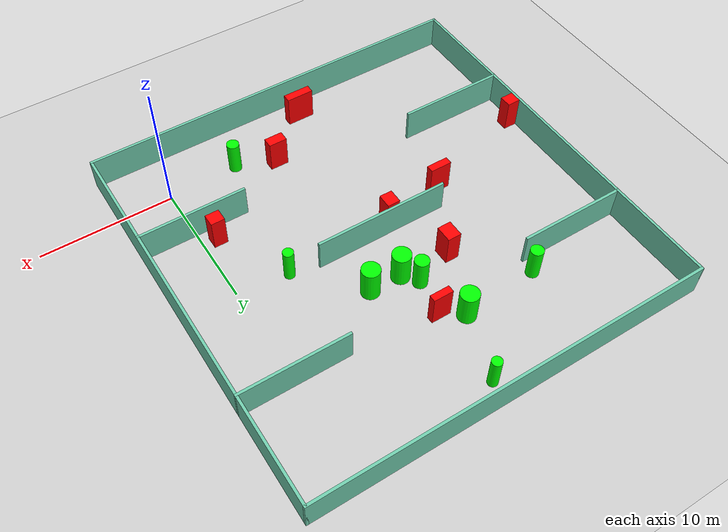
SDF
<sdf version="1.7">
 <world name="default">
  <light name="sun" type="directional">
   <pose>0 0 10 0 -0 0</pose>
   <diffuse>0.8 0.8 0.8 1</diffuse>
   <specular>0.2 0.2 0.2 1</specular>
   <attenuation>
    <range>1000</range>
    <constant>0.9</constant>
    <linear>0.01</linear>
    <quadratic>0.001</quadratic>
   </attenuation>
   <direction>-0.5 0.1 -0.9</direction>
   <spot><inner_angle>0</inner_angle><outer_angle>0</outer_angle><falloff>0</falloff></spot>
  </light>
  <model name="ground_plane">
   <static>1</static>
   <link name="link">
    <collision name="collision">
     <geometry><plane><normal>0 0 1</normal><size>100 100</size></plane></geometry>
     <surface>
      <contact><collide_bitmask>65535</collide_bitmask></contact>
      <friction><ode><mu>100</mu><mu2>50</mu2></ode></friction>
     </surface>
    </collision>
    <visual name="visual">
     <cast_shadows>0</cast_shadows>
     <geometry><plane><normal>0 0 1</normal><size>100 100</size></plane></geometry>
     <material>
      <script><uri>file://media/materials/scripts/gazebo.material</uri><name>Gazebo/Grey</name></script>
     </material>
    </visual>
   </link>
  </model>
  <gravity>0 0 -9.8</gravity>
  <magnetic_field>6e-06 2.3e-05 -4.2e-05</magnetic_field>
  <atmosphere type="adiabatic"/>
  <physics type="ode">
   <max_step_size>0.001</max_step_size>
   <real_time_factor>1</real_time_factor>
   <real_time_update_rate>1000</real_time_update_rate>
  </physics>
  <scene><ambient>0.4 0.4 0.4 1</ambient><background>0.7 0.7 0.7 1</background><shadows>1</shadows></scene>
  <spherical_coordinates>
   <surface_model>EARTH_WGS84</surface_model>
   <latitude_deg>0</latitude_deg>
   <longitude_deg>0</longitude_deg>
   <elevation>0</elevation>
   <heading_deg>0</heading_deg>
  </spherical_coordinates>
  <model name="my_base_walls">
   <link name="Wall_10">
    <collision name="Wall_10_Collision">
     <geometry><box><size>8.2 0.2 2.5</size></box></geometry>
     <pose>0 0 1.25 0 -0 0</pose>
    </collision>
    <visual name="Wall_10_Visual">
     <pose>0 0 1.25 0 -0 0</pose>
     <geometry><box><size>8.2 0.2 2.5</size></box></geometry>
     <material>
      <script><uri>file://media/materials/scripts/gazebo.material</uri><name>Gazebo/Grey</name></script>
      <ambient>0.435294 0.796078 0.67451 1</ambient>
     </material>
     <meta><layer>0</layer></meta>
    </visual>
    <pose>-11 -7 0 0 -0 0</pose>
   </link>
   <link name="Wall_12">
    <collision name="Wall_12_Collision">
     <geometry><box><size>8.2 0.2 2.5</size></box></geometry>
     <pose>0 0 1.25 0 -0 0</pose>
    </collision>
    <visual name="Wall_12_Visual">
     <pose>0 0 1.25 0 -0 0</pose>
     <geometry><box><size>8.2 0.2 2.5</size></box></geometry>
     <material>
      <script><uri>file://media/materials/scripts/gazebo.material</uri><name>Gazebo/Grey</name></script>
      <ambient>0.435294 0.796078 0.67451 1</ambient>
     </material>
     <meta><layer>0</layer></meta>
    </visual>
    <pose>-11 7 0 0 -0 0</pose>
   </link>
   <link name="Wall_14">
    <collision name="Wall_14_Collision">
     <geometry><box><size>8.2 0.2 2.5</size></box></geometry>
     <pose>0 0 1.25 0 -0 0</pose>
    </collision>
    <visual name="Wall_14_Visual">
     <pose>0 0 1.25 0 -0 0</pose>
     <geometry><box><size>8.2 0.2 2.5</size></box></geometry>
     <material>
      <script><uri>file://media/materials/scripts/gazebo.material</uri><name>Gazebo/Grey</name></script>
      <ambient>0.435294 0.796078 0.67451 1</ambient>
     </material>
     <meta><layer>0</layer></meta>
    </visual>
    <pose>11 7 0 0 -0 3.14159</pose>
   </link>
   <link name="Wall_16">
    <collision name="Wall_16_Collision">
     <geometry><box><size>10.2 0.2 2.5</size></box></geometry>
     <pose>0 0 1.25 0 -0 0</pose>
    </collision>
    <visual name="Wall_16_Visual">
     <pose>0 0 1.25 0 -0 0</pose>
     <geometry><box><size>10.2 0.2 2.5</size></box></geometry>
     <material>
      <script><uri>file://media/materials/scripts/gazebo.material</uri><name>Gazebo/Grey</name></script>
      <ambient>0.435294 0.796078 0.67451 1</ambient>
     </material>
     <meta><layer>0</layer></meta>
    </visual>
    <pose>0 0 0 0 -0 3.14159</pose>
   </link>
   <link name="Wall_2">
    <collision name="Wall_2_Collision">
     <geometry><box><size>30.2 0.2 2.5</size></box></geometry>
     <pose>0 0 1.25 0 -0 0</pose>
    </collision>
    <visual name="Wall_2_Visual">
     <pose>0 0 1.25 0 -0 0</pose>
     <geometry><box><size>30.2 0.2 2.5</size></box></geometry>
     <material>
      <script><uri>file://media/materials/scripts/gazebo.material</uri><name>Gazebo/Grey</name></script>
      <ambient>0.435294 0.796078 0.67451 1</ambient>
     </material>
     <meta><layer>0</layer></meta>
    </visual>
    <pose>0 -15 0 0 -0 3.14159</pose>
   </link>
   <link name="Wall_3">
    <collision name="Wall_3_Collision">
     <geometry><box><size>30.2 0.2 2.5</size></box></geometry>
     <pose>0 0 1.25 0 -0 0</pose>
    </collision>
    <visual name="Wall_3_Visual">
     <pose>0 0 1.25 0 -0 0</pose>
     <geometry><box><size>30.2 0.2 2.5</size></box></geometry>
     <material>
      <script><uri>file://media/materials/scripts/gazebo.material</uri><name>Gazebo/Grey</name></script>
      <ambient>0.435294 0.796078 0.67451 1</ambient>
     </material>
     <meta><layer>0</layer></meta>
    </visual>
    <pose>-15 0 0 0 -0 1.5708</pose>
   </link>
   <link name="Wall_4">
    <collision name="Wall_4_Collision">
     <geometry><box><size>30.2 0.2 2.5</size></box></geometry>
     <pose>0 0 1.25 0 -0 0</pose>
    </collision>
    <visual name="Wall_4_Visual">
     <pose>0 0 1.25 0 -0 0</pose>
     <geometry><box><size>30.2 0.2 2.5</size></box></geometry>
     <material>
      <script><uri>file://media/materials/scripts/gazebo.material</uri><name>Gazebo/Grey</name></script>
      <ambient>0.435294 0.796078 0.67451 1</ambient>
     </material>
     <meta><layer>0</layer></meta>
    </visual>
    <pose>0 15 0 0 -0 0</pose>
   </link>
   <link name="Wall_6">
    <collision name="Wall_6_Collision">
     <geometry><box><size>30.2 0.2 2.5</size></box></geometry>
     <pose>0 0 1.25 0 -0 0</pose>
    </collision>
    <visual name="Wall_6_Visual">
     <pose>0 0 1.25 0 -0 0</pose>
     <geometry><box><size>30.2 0.2 2.5</size></box></geometry>
     <material>
      <script><uri>file://media/materials/scripts/gazebo.material</uri><name>Gazebo/Grey</name></script>
      <ambient>0.435294 0.796078 0.67451 1</ambient>
     </material>
     <meta><layer>0</layer></meta>
    </visual>
    <pose>15 0 0 0 -0 1.5708</pose>
   </link>
   <link name="Wall_8">
    <collision name="Wall_8_Collision">
     <geometry><box><size>8.2 0.2 2.5</size></box></geometry>
     <pose>0 0 1.25 0 -0 0</pose>
    </collision>
    <visual name="Wall_8_Visual">
     <pose>0 0 1.25 0 -0 0</pose>
     <geometry><box><size>8.2 0.2 2.5</size></box></geometry>
     <material>
      <script><uri>file://media/materials/scripts/gazebo.material</uri><name>Gazebo/Grey</name></script>
      <ambient>0.435294 0.796078 0.67451 1</ambient>
     </material>
     <meta><layer>0</layer></meta>
    </visual>
    <pose>11 -7 0 0 -0 3.14159</pose>
   </link>
   <static>1</static>
   <pose>-11 11 0 0 -0 0</pose>
  </model>
  <model name="cylinder1">
   <static>1</static>
   <link name="link">
    <inertial>
     <mass>1</mass>
     <inertia><ixx>0.5</ixx><ixy>0</ixy><ixz>0</ixz><iyy>0.5</iyy><iyz>0</iyz><izz>1</izz></inertia>
    </inertial>
    <collision name="collision">
     <geometry><cylinder><radius>0.5356743906856357</radius><length>2.5</length></cylinder></geometry>
    </collision>
    <visual name="visual">
     <geometry><cylinder><radius>0.5356743906856357</radius><length>2.5</length></cylinder></geometry>
     <material>
      <ambient>0 1 0 1</ambient>
      <diffuse>0 1 0 1</diffuse>
      <specular>0.1 0.1 0.1 1</specular>
      <emissive>0 0 0 0</emissive>
     </material>
    </visual>
   </link>
   <pose>-10.94718177710826 15.756931488613372 1.25 0 0 0</pose>
  </model>
  <model name="cylinder2">
   <static>1</static>
   <link name="link">
    <inertial>
     <mass>1</mass>
     <inertia><ixx>0.5</ixx><ixy>0</ixy><ixz>0</ixz><iyy>0.5</iyy><iyz>0</iyz><izz>1</izz></inertia>
    </inertial>
    <collision name="collision">
     <geometry><cylinder><radius>0.4782153948116329</radius><length>2.5</length></cylinder></geometry>
    </collision>
    <visual name="visual">
     <geometry><cylinder><radius>0.4782153948116329</radius><length>2.5</length></cylinder></geometry>
     <material>
      <ambient>0 1 0 1</ambient>
      <diffuse>0 1 0 1</diffuse>
      <specular>0.1 0.1 0.1 1</specular>
      <emissive>0 0 0 0</emissive>
     </material>
    </visual>
   </link>
   <pose>-17.87757609668617 19.136883027087144 1.25 0 0 0</pose>
  </model>
  <model name="cylinder3">
   <static>1</static>
   <link name="link">
    <inertial>
     <mass>1</mass>
     <inertia><ixx>0.5</ixx><ixy>0</ixy><ixz>0</ixz><iyy>0.5</iyy><iyz>0</iyz><izz>1</izz></inertia>
    </inertial>
    <collision name="collision">
     <geometry><cylinder><radius>0.6865995590576577</radius><length>2.5</length></cylinder></geometry>
    </collision>
    <visual name="visual">
     <geometry><cylinder><radius>0.6865995590576577</radius><length>2.5</length></cylinder></geometry>
     <material>
      <ambient>0 1 0 1</ambient>
      <diffuse>0 1 0 1</diffuse>
      <specular>0.1 0.1 0.1 1</specular>
      <emissive>0 0 0 0</emissive>
     </material>
    </visual>
   </link>
   <pose>-10.105474109273246 14.641725071112042 1.25 0 0 0</pose>
  </model>
  <model name="cylinder4">
   <static>1</static>
   <link name="link">
    <inertial>
     <mass>1</mass>
     <inertia><ixx>0.5</ixx><ixy>0</ixy><ixz>0</ixz><iyy>0.5</iyy><iyz>0</iyz><izz>1</izz></inertia>
    </inertial>
    <collision name="collision">
     <geometry><cylinder><radius>0.3758399723986306</radius><length>2.5</length></cylinder></geometry>
    </collision>
    <visual name="visual">
     <geometry><cylinder><radius>0.3758399723986306</radius><length>2.5</length></cylinder></geometry>
     <material>
      <ambient>0 1 0 1</ambient>
      <diffuse>0 1 0 1</diffuse>
      <specular>0.1 0.1 0.1 1</specular>
      <emissive>0 0 0 0</emissive>
     </material>
    </visual>
   </link>
   <pose>-10.409443167479782 24.40535389527443 1.25 0 0 0</pose>
  </model>
  <model name="cylinder5">
   <static>1</static>
   <link name="link">
    <inertial>
     <mass>1</mass>
     <inertia><ixx>0.5</ixx><ixy>0</ixy><ixz>0</ixz><iyy>0.5</iyy><iyz>0</iyz><izz>1</izz></inertia>
    </inertial>
    <collision name="collision">
     <geometry><cylinder><radius>0.4656932307036874</radius><length>2.5</length></cylinder></geometry>
    </collision>
    <visual name="visual">
     <geometry><cylinder><radius>0.4656932307036874</radius><length>2.5</length></cylinder></geometry>
     <material>
      <ambient>0 1 0 1</ambient>
      <diffuse>0 1 0 1</diffuse>
      <specular>0.1 0.1 0.1 1</specular>
      <emissive>0 0 0 0</emissive>
     </material>
    </visual>
   </link>
   <pose>-5.372697020141803 -0.2226768673758155 1.25 0 0 0</pose>
  </model>
  <model name="cylinder6">
   <static>1</static>
   <link name="link">
    <inertial>
     <mass>1</mass>
     <inertia><ixx>0.5</ixx><ixy>0</ixy><ixz>0</ixz><iyy>0.5</iyy><iyz>0</iyz><izz>1</izz></inertia>
    </inertial>
    <collision name="collision">
     <geometry><cylinder><radius>0.6804273919135758</radius><length>2.5</length></cylinder></geometry>
    </collision>
    <visual name="visual">
     <geometry><cylinder><radius>0.6804273919135758</radius><length>2.5</length></cylinder></geometry>
     <material>
      <ambient>0 1 0 1</ambient>
      <diffuse>0 1 0 1</diffuse>
      <specular>0.1 0.1 0.1 1</specular>
      <emissive>0 0 0 0</emissive>
     </material>
    </visual>
   </link>
   <pose>-7.705662257620148 14.590562915664218 1.25 0 0 0</pose>
  </model>
  <model name="cylinder7">
   <static>1</static>
   <link name="link">
    <inertial>
     <mass>1</mass>
     <inertia><ixx>0.5</ixx><ixy>0</ixy><ixz>0</ixz><iyy>0.5</iyy><iyz>0</iyz><izz>1</izz></inertia>
    </inertial>
    <collision name="collision">
     <geometry><cylinder><radius>0.39214318693553585</radius><length>2.5</length></cylinder></geometry>
    </collision>
    <visual name="visual">
     <geometry><cylinder><radius>0.39214318693553585</radius><length>2.5</length></cylinder></geometry>
     <material>
      <ambient>0 1 0 1</ambient>
      <diffuse>0 1 0 1</diffuse>
      <specular>0.1 0.1 0.1 1</specular>
      <emissive>0 0 0 0</emissive>
     </material>
    </visual>
   </link>
   <pose>-3.845821150728554 10.4923494235473 1.25 0 0 0</pose>
  </model>
  <model name="cylinder8">
   <static>1</static>
   <link name="link">
    <inertial>
     <mass>1</mass>
     <inertia><ixx>0.5</ixx><ixy>0</ixy><ixz>0</ixz><iyy>0.5</iyy><iyz>0</iyz><izz>1</izz></inertia>
    </inertial>
    <collision name="collision">
     <geometry><cylinder><radius>0.6833203285446715</radius><length>2.5</length></cylinder></geometry>
    </collision>
    <visual name="visual">
     <geometry><cylinder><radius>0.6833203285446715</radius><length>2.5</length></cylinder></geometry>
     <material>
      <ambient>0 1 0 1</ambient>
      <diffuse>0 1 0 1</diffuse>
      <specular>0.1 0.1 0.1 1</specular>
      <emissive>0 0 0 0</emissive>
     </material>
    </visual>
   </link>
   <pose>-12.02754633991512 19.5510018042011 1.25 0 0 0</pose>
  </model>
  <model name="box1">
   <static>1</static>
   <link name="link">
    <inertial>
     <mass>1</mass>
     <inertia><ixx>0.083</ixx><ixy>0</ixy><ixz>0</ixz><iyy>0.083</iyy><iyz>0</iyz><izz>0.083</izz></inertia>
    </inertial>
    <collision name="collision">
     <geometry><box><size>1.0204321414295867 0.9255907928371152 2.5</size></box></geometry>
    </collision>
    <visual name="visual">
     <geometry><box><size>1.0204321414295867 0.9255907928371152 2.5</size></box></geometry>
     <material>
      <ambient>1 0 0 1</ambient>
      <diffuse>1 0 0 1</diffuse>
      <specular>0.1 0.1 0.1 1</specular>
      <emissive>0 0 0 0</emissive>
     </material>
    </visual>
    <sensor name="my_contact" type="contact">
     <contact><collision>box_collision</collision><topic>__default_topic__</topic></contact>
    </sensor>
   </link>
   <pose>-25.395309226332284 6.81070217942594 1.25 0 0 0</pose>
  </model>
  <model name="box2">
   <static>1</static>
   <link name="link">
    <inertial>
     <mass>1</mass>
     <inertia><ixx>0.083</ixx><ixy>0</ixy><ixz>0</ixz><iyy>0.083</iyy><iyz>0</iyz><izz>0.083</izz></inertia>
    </inertial>
    <collision name="collision">
     <geometry><box><size>1.3935551209766128 0.7900592328337226 2.5</size></box></geometry>
    </collision>
    <visual name="visual">
     <geometry><box><size>1.3935551209766128 0.7900592328337226 2.5</size></box></geometry>
     <material>
      <ambient>1 0 0 1</ambient>
      <diffuse>1 0 0 1</diffuse>
      <specular>0.1 0.1 0.1 1</specular>
      <emissive>0 0 0 0</emissive>
     </material>
    </visual>
    <sensor name="my_contact" type="contact">
     <contact><collision>box_collision</collision><topic>__default_topic__</topic></contact>
    </sensor>
   </link>
   <pose>-8.247286265033718 1.0074444031474545 1.25 0 0 0</pose>
  </model>
  <model name="box3">
   <static>1</static>
   <link name="link">
    <inertial>
     <mass>1</mass>
     <inertia><ixx>0.083</ixx><ixy>0</ixy><ixz>0</ixz><iyy>0.083</iyy><iyz>0</iyz><izz>0.083</izz></inertia>
    </inertial>
    <collision name="collision">
     <geometry><box><size>1.030017621116744 1.255633157100792 2.5</size></box></geometry>
    </collision>
    <visual name="visual">
     <geometry><box><size>1.030017621116744 1.255633157100792 2.5</size></box></geometry>
     <material>
      <ambient>1 0 0 1</ambient>
      <diffuse>1 0 0 1</diffuse>
      <specular>0.1 0.1 0.1 1</specular>
      <emissive>0 0 0 0</emissive>
     </material>
    </visual>
    <sensor name="my_contact" type="contact">
     <contact><collision>box_collision</collision><topic>__default_topic__</topic></contact>
    </sensor>
   </link>
   <pose>-13.912729819894738 14.7241371293199 1.25 0 0 0</pose>
  </model>
  <model name="box4">
   <static>1</static>
   <link name="link">
    <inertial>
     <mass>1</mass>
     <inertia><ixx>0.083</ixx><ixy>0</ixy><ixz>0</ixz><iyy>0.083</iyy><iyz>0</iyz><izz>0.083</izz></inertia>
    </inertial>
    <collision name="collision">
     <geometry><box><size>1.4871266707670066 0.5210242461084107 2.5</size></box></geometry>
    </collision>
    <visual name="visual">
     <geometry><box><size>1.4871266707670066 0.5210242461084107 2.5</size></box></geometry>
     <material>
      <ambient>1 0 0 1</ambient>
      <diffuse>1 0 0 1</diffuse>
      <specular>0.1 0.1 0.1 1</specular>
      <emissive>0 0 0 0</emissive>
     </material>
    </visual>
    <sensor name="my_contact" type="contact">
     <contact><collision>box_collision</collision><topic>__default_topic__</topic></contact>
    </sensor>
   </link>
   <pose>-10.488029541511118 18.58302383330784 1.25 0 0 0</pose>
  </model>
  <model name="box5">
   <static>1</static>
   <link name="link">
    <inertial>
     <mass>1</mass>
     <inertia><ixx>0.083</ixx><ixy>0</ixy><ixz>0</ixz><iyy>0.083</iyy><iyz>0</iyz><izz>0.083</izz></inertia>
    </inertial>
    <collision name="collision">
     <geometry><box><size>1.6470262125767954 0.5701315903392967 2.5</size></box></geometry>
    </collision>
    <visual name="visual">
     <geometry><box><size>1.6470262125767954 0.5701315903392967 2.5</size></box></geometry>
     <material>
      <ambient>1 0 0 1</ambient>
      <diffuse>1 0 0 1</diffuse>
      <specular>0.1 0.1 0.1 1</specular>
      <emissive>0 0 0 0</emissive>
     </material>
    </visual>
    <sensor name="my_contact" type="contact">
     <contact><collision>box_collision</collision><topic>__default_topic__</topic></contact>
    </sensor>
   </link>
   <pose>-16.88533508619435 9.419947059480968 1.25 0 0 0</pose>
  </model>
  <model name="box6">
   <static>1</static>
   <link name="link">
    <inertial>
     <mass>1</mass>
     <inertia><ixx>0.083</ixx><ixy>0</ixy><ixz>0</ixz><iyy>0.083</iyy><iyz>0</iyz><izz>0.083</izz></inertia>
    </inertial>
    <collision name="collision">
     <geometry><box><size>0.9614759234139045 1.0795989001270399 2.5</size></box></geometry>
    </collision>
    <visual name="visual">
     <geometry><box><size>0.9614759234139045 1.0795989001270399 2.5</size></box></geometry>
     <material>
      <ambient>1 0 0 1</ambient>
      <diffuse>1 0 0 1</diffuse>
      <specular>0.1 0.1 0.1 1</specular>
      <emissive>0 0 0 0</emissive>
     </material>
    </visual>
    <sensor name="my_contact" type="contact">
     <contact><collision>box_collision</collision><topic>__default_topic__</topic></contact>
    </sensor>
   </link>
   <pose>-12.134709806241991 10.190316549531426 1.25 0 0 0</pose>
  </model>
  <model name="box7">
   <static>1</static>
   <link name="link">
    <inertial>
     <mass>1</mass>
     <inertia><ixx>0.083</ixx><ixy>0</ixy><ixz>0</ixz><iyy>0.083</iyy><iyz>0</iyz><izz>0.083</izz></inertia>
    </inertial>
    <collision name="collision">
     <geometry><box><size>2.0883162664726083 0.6416041265644232 2.5</size></box></geometry>
    </collision>
    <visual name="visual">
     <geometry><box><size>2.0883162664726083 0.6416041265644232 2.5</size></box></geometry>
     <material>
      <ambient>1 0 0 1</ambient>
      <diffuse>1 0 0 1</diffuse>
      <specular>0.1 0.1 0.1 1</specular>
      <emissive>0 0 0 0</emissive>
     </material>
    </visual>
    <sensor name="my_contact" type="contact">
     <contact><collision>box_collision</collision><topic>__default_topic__</topic></contact>
    </sensor>
   </link>
   <pose>-12.098689880086702 -2.321531813143844 1.25 0 0 0</pose>
  </model>
  <model name="box8">
   <static>1</static>
   <link name="link">
    <inertial>
     <mass>1</mass>
     <inertia><ixx>0.083</ixx><ixy>0</ixy><ixz>0</ixz><iyy>0.083</iyy><iyz>0</iyz><izz>0.083</izz></inertia>
    </inertial>
    <collision name="collision">
     <geometry><box><size>1.032459596297075 0.9520673361164638 2.5</size></box></geometry>
    </collision>
    <visual name="visual">
     <geometry><box><size>1.032459596297075 0.9520673361164638 2.5</size></box></geometry>
     <material>
      <ambient>1 0 0 1</ambient>
      <diffuse>1 0 0 1</diffuse>
      <specular>0.1 0.1 0.1 1</specular>
      <emissive>0 0 0 0</emissive>
     </material>
    </visual>
    <sensor name="my_contact" type="contact">
     <contact><collision>box_collision</collision><topic>__default_topic__</topic></contact>
    </sensor>
   </link>
   <pose>-1.1234302530485927 5.244729779484725 1.25 0 0 0</pose>
  </model>
 </world>
</sdf>
